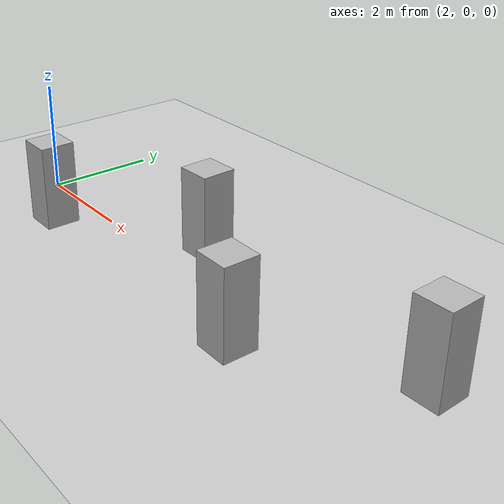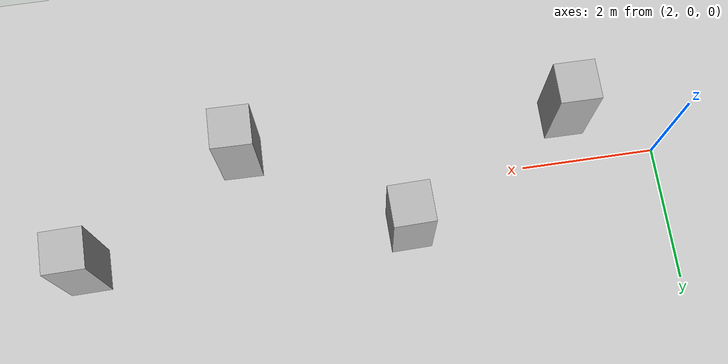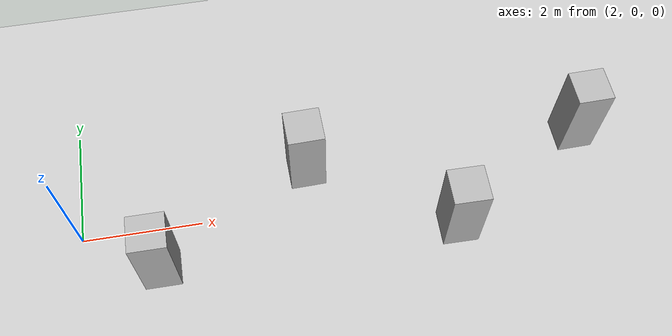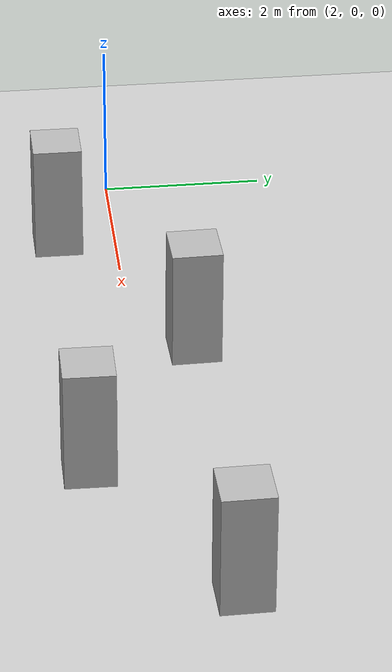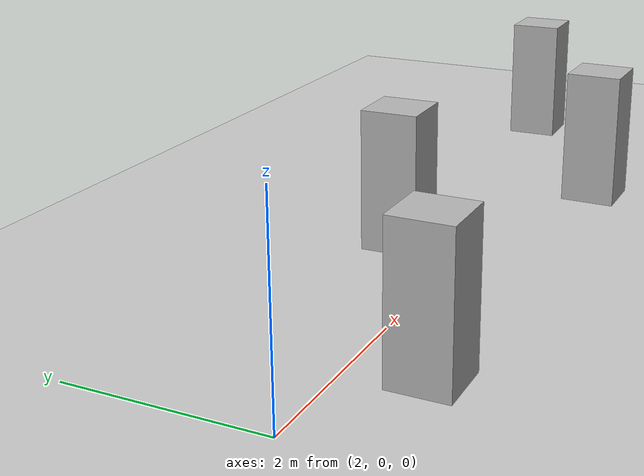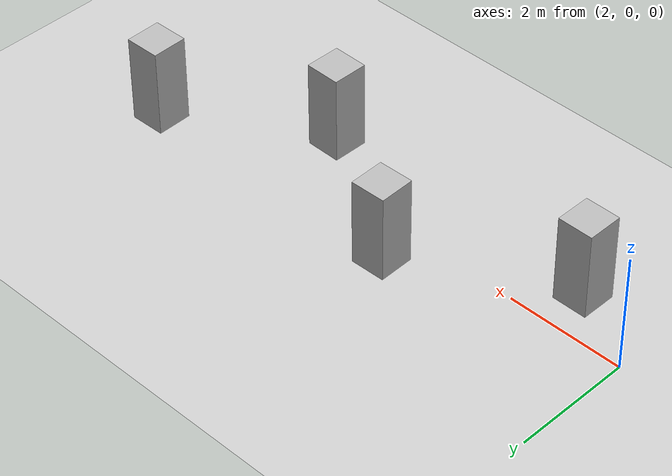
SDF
<?xml version="1.0"?>
<sdf version="1.6">
  <world name="v2-04g-r2-static-s4958">
    <gravity>0 0 -9.81</gravity>
    <physics name="v2_deterministic" type="ode">
      <max_step_size>0.002</max_step_size>
      <real_time_update_rate>500</real_time_update_rate>
    </physics>
    <include>
      <uri>model://sun</uri>
    </include>
    <include>
      <uri>model://ground_plane</uri>
    </include>
    <model name="pillar-1">
      <static>true</static>
      <pose>3.284818138 -0.729061600 0.750000000 0 0 -0.003062760</pose>
      <link name="link">
        <collision name="collision">
          <geometry>
            <box>
              <size>0.600000 0.600000 1.500000</size>
            </box>
          </geometry>
        </collision>
        <visual name="visual">
          <geometry>
            <box>
              <size>0.600000 0.600000 1.500000</size>
            </box>
          </geometry>
        </visual>
      </link>
    </model>
    <model name="pillar-2">
      <static>true</static>
      <pose>5.884703156 0.710487136 0.750000000 0 0 0.021776384</pose>
      <link name="link">
        <collision name="collision">
          <geometry>
            <box>
              <size>0.600000 0.600000 1.500000</size>
            </box>
          </geometry>
        </collision>
        <visual name="visual">
          <geometry>
            <box>
              <size>0.600000 0.600000 1.500000</size>
            </box>
          </geometry>
        </visual>
      </link>
    </model>
    <model name="pillar-3">
      <static>true</static>
      <pose>8.242248109 -0.755708163 0.750000000 0 0 -0.015083251</pose>
      <link name="link">
        <collision name="collision">
          <geometry>
            <box>
              <size>0.600000 0.600000 1.500000</size>
            </box>
          </geometry>
        </collision>
        <visual name="visual">
          <geometry>
            <box>
              <size>0.600000 0.600000 1.500000</size>
            </box>
          </geometry>
        </visual>
      </link>
    </model>
    <model name="pillar-4">
      <static>true</static>
      <pose>10.657612587 0.690202310 0.750000000 0 0 0.016983087</pose>
      <link name="link">
        <collision name="collision">
          <geometry>
            <box>
              <size>0.600000 0.600000 1.500000</size>
            </box>
          </geometry>
        </collision>
        <visual name="visual">
          <geometry>
            <box>
              <size>0.600000 0.600000 1.500000</size>
            </box>
          </geometry>
        </visual>
      </link>
    </model>
  </world>
</sdf>
